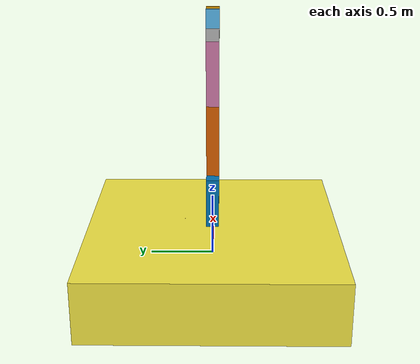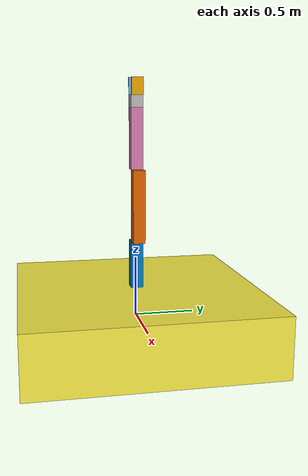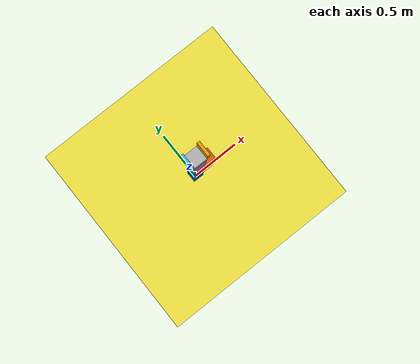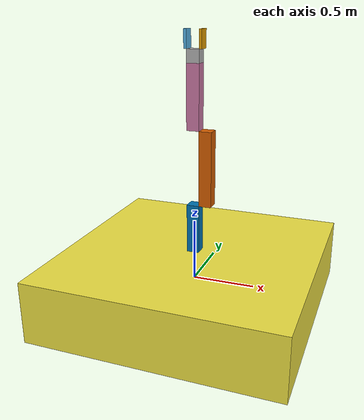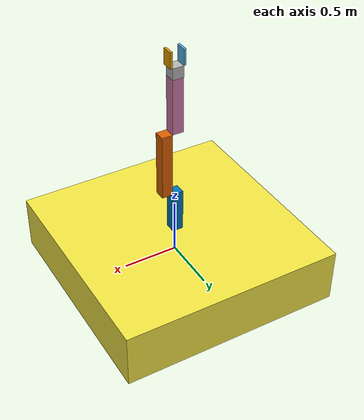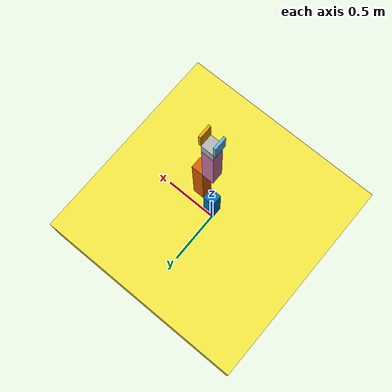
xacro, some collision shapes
<?xml version="1.0" ?>

<robot name="manipulator" xmlns:xacro="http://www.ros.org/wiki/xacro">

    <xacro:include filename="$(find manipulator_description)/urdf/materials.xacro" />
	<xacro:include filename="$(find manipulator_description)/urdf/links_joints_macro.xacro" />
	<xacro:include filename="$(find manipulator_description)/urdf/robot_parameters.xacro" />
	<xacro:include filename="$(find manipulator_description)/urdf/manipulator_plugin.xacro" />

    <xacro:link_box name="${bl}" origin_rpy="0 0 0" origin_xyz="0 0 0" size="2 2 0.5"
                mass="5.0" ixx="7.0833" iyy="7.0833" izz="13.3333" ixy="-5.0" iyz="-1.25" ixz="-1.25" />
    <xacro:m_joint name="${bl}__${l01}" type="revolute"
                axis_xyz="0 0 1"
                limit_e="100.0" limit_l="-3.14" limit_u="3.14" limit_v="0.5"
                origin_rpy="0 0 0" origin_xyz="0 0 0.25"
                parent="${bl}" child="${l01}" />

    <xacro:link_box name="${l01}" origin_rpy="0 0 0" origin_xyz="0 0 0.2" size="0.1 0.1 0.4"
                mass="0.02" ixx="0.001133" iyy="0.001133" izz="0.0001333" ixy="-0.00005" iyz="-0.0002" ixz="-0.0002" />

    <xacro:m_joint name="${l01}__${l02}" type="revolute"
                axis_xyz="1 0 0"
                limit_e="100.0" limit_l="-3.14" limit_u="3.14" limit_v="0.5"
                origin_rpy="0 0 0" origin_xyz="0.05 0 0.4"
                parent="${l01}" child="${l02}" />

    <xacro:link_box name="${l02}" origin_rpy="0 0 0" origin_xyz="0.05 0 0.3" size="0.1 0.1 0.6"
                mass="0.03" ixx="0.0037" iyy="0.0037" izz="0.0002" ixy="-0.000075" iyz="-0.00045" ixz="-0.00045" />

    <xacro:m_joint name="${l02}__${l03}" type="revolute"
                axis_xyz="1 0 0"
                limit_e="100.0" limit_l="-3.14" limit_u="3.14" limit_v="0.5"
                origin_rpy="0 0 0" origin_xyz="0 0 0.6"
                parent="${l02}" child="${l03}" />

    <xacro:link_box name="${l03}" origin_rpy="0 0 0" origin_xyz="-0.05 0 0.25" size="0.1 0.1 0.5"
                mass="0.025" ixx="0.00216" iyy="0.00216" izz="0.000166" ixy="-0.0000625" iyz="-0.0003125" ixz="-0.0003125" />

    <xacro:m_joint name="${l03}__${l04}" type="revolute"
                axis_xyz="0 0 1"
                limit_e="100.0" limit_l="-3.14" limit_u="3.14" limit_v="0.5"
                origin_rpy="0 0 0" origin_xyz="-0.05 0 0.5"
                parent="${l03}" child="${l04}" />

    <xacro:link_box name="${l04}" origin_rpy="0 0 0" origin_xyz="0 0 0.05" size="0.1 0.1 0.1"
                mass="0.005" ixx="0.0000333" iyy="0.0000333" izz="0.0000333" ixy="-0.0000125" iyz="-0.0000125" ixz="-0.0000125" />

    <!-- Two plate Gripper -->
    <xacro:m_joint name="${l04}__${gll}" type="prismatic"
                axis_xyz="1 0 0"
                limit_e="100.0" limit_l="-0.05" limit_u="0" limit_v="0.5"
                origin_rpy="0 0 0" origin_xyz="0.05 0 0.1"
                parent="${l04}" child="${gll}" />

    <xacro:link_box name="${gll}" origin_rpy="0 0 0" origin_xyz="0.01 0 0.07" size="0.02 0.1 0.14"
                mass="0.0014" ixx="0.0000138" iyy="0.00000933" izz="0.000004853" ixy="-0.0000007" iyz="-0.0000049" ixz="-0.00000392" />

    <xacro:m_joint name="${l04}__${glr}" type="prismatic"
                axis_xyz="1 0 0"
                limit_e="100.0" limit_l="0" limit_u="0.05" limit_v="0.5"
                origin_rpy="0 0 0" origin_xyz="-0.05 0 0.1"
                parent="${l04}" child="${glr}" />

    <xacro:link_box name="${glr}" origin_rpy="0 0 0" origin_xyz="-0.01 0 0.07" size="0.02 0.1 0.14"
                mass="0.0014" ixx="0.0000138" iyy="0.00000933" izz="0.000004853" ixy="-0.0000007" iyz="-0.0000049" ixz="-0.00000392" />

</robot>

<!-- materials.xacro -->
<robot name="manipulator" xmlns:xacro="http://www.ros.org/wiki/xacro" >

    <material name="grey">
        <color rgba="0.300 0.300 0.300 1.000"/>
    </material>

    <material name="black">
        <color rgba="0.000 0.000 0.000 1.000"/>
    </material>

    <material name="blue">
        <color rgba="0.000 0.000 1.000 1.000"/>
    </material>

</robot>

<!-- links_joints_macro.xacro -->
<robot name="manipulator" xmlns:xacro="http://www.ros.org/wiki/xacro">

  <xacro:macro name="link_box" params="name origin_xyz origin_rpy size mass ixx ixy ixz iyy iyz izz">
    <link name="${name}">
      <inertial>
        <mass value="${mass}" />
        <origin rpy="${origin_rpy}" xyz="${origin_xyz}" />
        <inertia ixx="${ixx}" ixy="${ixy}" ixz="${ixz}" iyy="${iyy}" iyz="${iyz}" izz="${izz}" />
      </inertial>
      <collision>
        <origin rpy="${origin_rpy}" xyz="${origin_xyz}" />
        <geometry>
          <box size="${size}" />
        </geometry>
      </collision>
      <visual>
        <origin rpy="${origin_rpy}" xyz="${origin_xyz}" />
        <geometry>
          <box size="${size}" />
        </geometry>
      </visual>
    </link>
  </xacro:macro>

  <xacro:macro name="link_box_ic" params="name origin_xyz origin_rpy size">
    <link name="${name}">
      <visual>
        <origin rpy="${origin_rpy}" xyz="${origin_xyz}" />
        <geometry>
          <box size="${size}" />
        </geometry>
      </visual>
    </link>
  </xacro:macro>

  <xacro:macro name="m_joint" params="name type axis_xyz origin_rpy origin_xyz parent child limit_e limit_l limit_u limit_v">
    <joint name="${name}" type="${type}">
      <axis xyz="${axis_xyz}" />
      <limit effort="${limit_e}" lower="${limit_l}" upper="${limit_u}" velocity="${limit_v}" />
      <origin rpy="${origin_rpy}" xyz="${origin_xyz}" />
      <parent link="${parent}" />
      <child link="${child}" />
    </joint>

    <transmission name="trans_${name}">
      <type>transmission_interface/SimpleTransmission</type>
      <joint name="${name}">
        <hardwareInterface>hardware_interface/EffortJointInterface</hardwareInterface>
      </joint>
      <actuator name="motor_${name}">
        <hardwareInterface>hardware_interface/EffortJointInterface</hardwareInterface>
        <mechanicalReduction>1</mechanicalReduction>
      </actuator>
    </transmission>

  </xacro:macro>

</robot>

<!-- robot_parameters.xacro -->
<robot xmlns:xacro="http://www.ros.org/wiki/xacro">
  <xacro:property name="bl" value="base_link" />
  <xacro:property name="l01" value="link_01" />
  <xacro:property name="l02" value="link_02" />
  <xacro:property name="l03" value="link_03" />
  <xacro:property name="l04" value="link_04" />
  <xacro:property name="gll" value="grip_l" />
  <xacro:property name="glr" value="grip_r" />
  <xacro:property name="cam" value="camera" />
</robot>

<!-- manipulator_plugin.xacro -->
<robot>

    <gazebo>
        <plugin name="gazebo_ros_control" filename="libgazebo_ros_control.so">
            <robotNamespace>/manipulator</robotNamespace>
            <robotSimType>gazebo_ros_control/DefaultRobotHWSim</robotSimType>
        </plugin>
    </gazebo>

    <!-- Camera Joints and Frame links -->
    <joint name="intelrealsense" type="fixed">
        <axis xyz="0 0 0" />
        <origin xyz="0 0.2 0.3" rpy="0 0 1.57"/>
        <parent link="base_link"/>
        <child link="camera_link"/>
    </joint>
    <link name="camera_link">
        <collision>
            <origin xyz="0.02 0 0" rpy="0 0 0"/>
            <geometry>
                <box size="0.001 0.001 0.001"/>
            </geometry>
        </collision>

        <visual>
            <origin xyz="0 0 0" rpy="1.5707 0 1.5707"/>
            <geometry>
                <mesh filename="package://manipulator_description/meshes/NAVRS.STL" />
            </geometry>
        </visual>

        <inertial>
            <mass value="1e-5" />
            <origin xyz="0 0 0" rpy="0 0 0"/>
            <inertia ixx="0" ixy="0" ixz="0" iyy="0" iyz="0" izz="0" />
        </inertial>
    </link>

    <joint name="camera_optical_joint" type="fixed">
        <origin xyz="0 0 0" rpy="${-pi/2} 0 ${-pi/2}"/>
        <parent link="camera_link"/>
        <child link="camera_rgb_frame"/>
    </joint>

    <link name="camera_rgb_frame">
    </link>

    <joint name="camera_depth_joint" type="fixed">
        <origin xyz="0 0 0" rpy="${-pi/2} 0 ${-pi/2}"/>
        <parent link="camera_link"/>
        <child link="camera_depth_frame"/>
    </joint>

    <link name="camera_depth_frame">
    </link>

    <!-- intel realsense depth camera -->
    <gazebo reference="camera_link">
        <sensor type="depth" name="intelrealsenseD435i">
            <material>Gazebo/Red</material>
            <always_on>1</always_on>
            <visualize>true</visualize>
            <camera>
                <horizontal_fov>1.047</horizontal_fov>
                <image>
                    <width>640</width>
                    <height>480</height>
                    <format>R8G8B8</format>
                </image>
                <depth_camera>

                </depth_camera>
                <clip>
                    <near>0.1</near>
                    <far>100</far>
                </clip>
            </camera>
            <plugin name="intelrealsense" filename="libgazebo_ros_openni_kinect.so">
                <alwaysOn>true</alwaysOn>
                <updateRate>10.0</updateRate>
                <cameraName>camera</cameraName>
                <frameName>camera_depth_frame</frameName>
                <imageTopicName>/camera/color/image_raw</imageTopicName>
                <depthImageTopicName>/camera/depth/image_raw</depthImageTopicName>
                <pointCloudTopicName>depth/points</pointCloudTopicName>
                <cameraInfoTopicName>/camera/color/camera_info</cameraInfoTopicName>
                <depthImageCameraInfoTopicName>/camera/depth/camera_info</depthImageCameraInfoTopicName>
                <pointCloudCutoff>0.2</pointCloudCutoff>
                <pointCloudCutoffMax>10.0</pointCloudCutoffMax>
                <hackBaseline>0.07</hackBaseline>
                <distortionK1>0.0</distortionK1>
                <distortionK2>0.0</distortionK2>
                <distortionK3>0.0</distortionK3>
                <distortionT1>0.0</distortionT1>
                <distortionT2>0.0</distortionT2>
                <CxPrime>0.0</CxPrime>
                <Cx>0.0</Cx>
                <Cy>0.0</Cy>
                <focalLength>0.0</focalLength>
            </plugin>
        </sensor>
    </gazebo>

</robot>
